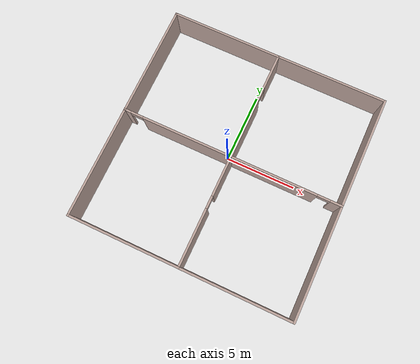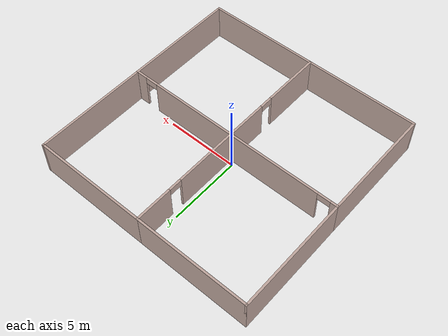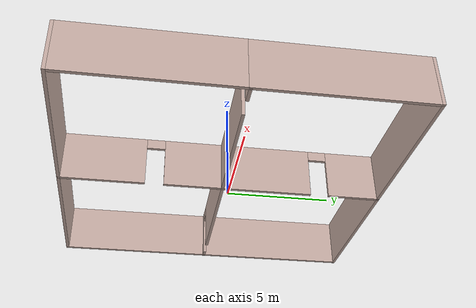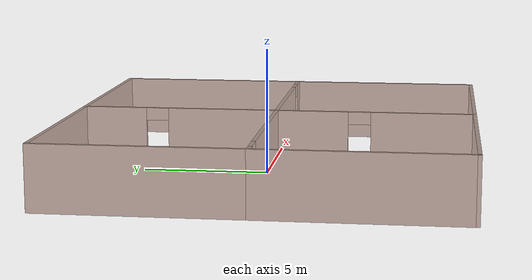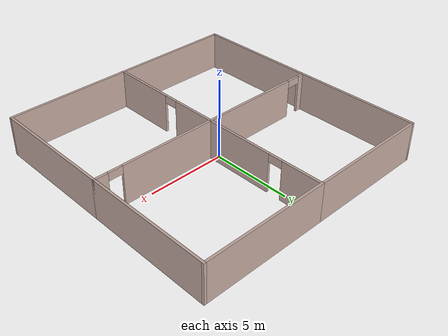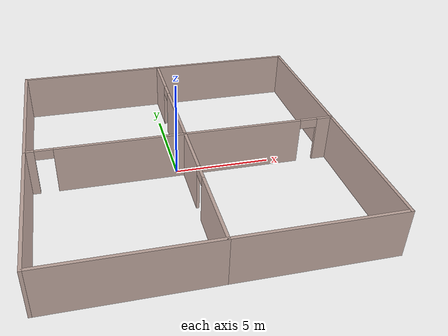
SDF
<?xml version='1.0'?>
<sdf version='1.7'>
  <model name='plane_2'>
    <pose>0.379349 -0.328001 0 0 -0 0</pose>
    <link name='Wall_10'>
      <pose>-3.925 0 0 0 -0 0</pose>
      <visual name='Wall_10_Visual_0'>
        <pose>-3.73035 0 1.25 0 -0 0</pose>
        <geometry>
          <box>
            <size>0.539304 0.15 2.5</size>
          </box>
        </geometry>
        <material>
          <script>
            <uri>file://media/materials/scripts/gazebo.material</uri>
            <name>Gazebo/Grey</name>
          </script>
          <ambient>0.760784 0.662745 0.627451 1</ambient>
        </material>
        <meta>
          <layer>0</layer>
        </meta>
      </visual>
      <collision name='Wall_10_Collision_0'>
        <geometry>
          <box>
            <size>0.539304 0.15 2.5</size>
          </box>
        </geometry>
        <pose>-3.73035 0 1.25 0 -0 0</pose>
      </collision>
      <visual name='Wall_10_Visual_1'>
        <pose>0.719652 0 1.25 0 -0 0</pose>
        <geometry>
          <box>
            <size>6.5607 0.15 2.5</size>
          </box>
        </geometry>
        <material>
          <script>
            <uri>file://media/materials/scripts/gazebo.material</uri>
            <name>Gazebo/Grey</name>
          </script>
          <ambient>0.760784 0.662745 0.627451 1</ambient>
        </material>
        <meta>
          <layer>0</layer>
        </meta>
      </visual>
      <collision name='Wall_10_Collision_1'>
        <geometry>
          <box>
            <size>6.5607 0.15 2.5</size>
          </box>
        </geometry>
        <pose>0.719652 0 1.25 0 -0 0</pose>
      </collision>
      <visual name='Wall_10_Visual_2'>
        <pose>-3.0107 0 2.25 0 -0 0</pose>
        <geometry>
          <box>
            <size>0.9 0.15 0.5</size>
          </box>
        </geometry>
        <material>
          <script>
            <uri>file://media/materials/scripts/gazebo.material</uri>
            <name>Gazebo/Grey</name>
          </script>
          <ambient>0.760784 0.662745 0.627451 1</ambient>
        </material>
        <meta>
          <layer>0</layer>
        </meta>
      </visual>
      <collision name='Wall_10_Collision_2'>
        <geometry>
          <box>
            <size>0.9 0.15 0.5</size>
          </box>
        </geometry>
        <pose>-3.0107 0 2.25 0 -0 0</pose>
      </collision>
    </link>
    <link name='Wall_11'>
      <pose>-0 -3.925 0 0 -0 -1.5708</pose>
      <visual name='Wall_11_Visual_0'>
        <pose>-2.52544 0 1.25 0 -0 0</pose>
        <geometry>
          <box>
            <size>2.94912 0.15 2.5</size>
          </box>
        </geometry>
        <material>
          <script>
            <uri>file://media/materials/scripts/gazebo.material</uri>
            <name>Gazebo/Grey</name>
          </script>
          <ambient>0.760784 0.662745 0.627451 1</ambient>
        </material>
        <meta>
          <layer>0</layer>
        </meta>
      </visual>
      <collision name='Wall_11_Collision_0'>
        <geometry>
          <box>
            <size>2.94912 0.15 2.5</size>
          </box>
        </geometry>
        <pose>-2.52544 0 1.25 0 -0 0</pose>
      </collision>
      <visual name='Wall_11_Visual_1'>
        <pose>1.92456 0 1.25 0 -0 0</pose>
        <geometry>
          <box>
            <size>4.15088 0.15 2.5</size>
          </box>
        </geometry>
        <material>
          <script>
            <uri>file://media/materials/scripts/gazebo.material</uri>
            <name>Gazebo/Grey</name>
          </script>
          <ambient>0.760784 0.662745 0.627451 1</ambient>
        </material>
        <meta>
          <layer>0</layer>
        </meta>
      </visual>
      <collision name='Wall_11_Collision_1'>
        <geometry>
          <box>
            <size>4.15088 0.15 2.5</size>
          </box>
        </geometry>
        <pose>1.92456 0 1.25 0 -0 0</pose>
      </collision>
      <visual name='Wall_11_Visual_2'>
        <pose>-0.600877 0 2.25 0 -0 0</pose>
        <geometry>
          <box>
            <size>0.9 0.15 0.5</size>
          </box>
        </geometry>
        <material>
          <script>
            <uri>file://media/materials/scripts/gazebo.material</uri>
            <name>Gazebo/Grey</name>
          </script>
          <ambient>0.760784 0.662745 0.627451 1</ambient>
        </material>
        <meta>
          <layer>0</layer>
        </meta>
      </visual>
      <collision name='Wall_11_Collision_2'>
        <geometry>
          <box>
            <size>0.9 0.15 0.5</size>
          </box>
        </geometry>
        <pose>-0.600877 0 2.25 0 -0 0</pose>
      </collision>
    </link>
    <link name='Wall_12'>
      <collision name='Wall_12_Collision'>
        <geometry>
          <box>
            <size>8 0.15 2.5</size>
          </box>
        </geometry>
        <pose>0 0 1.25 0 -0 0</pose>
      </collision>
      <visual name='Wall_12_Visual'>
        <pose>0 0 1.25 0 -0 0</pose>
        <geometry>
          <box>
            <size>8 0.15 2.5</size>
          </box>
        </geometry>
        <material>
          <script>
            <uri>file://media/materials/scripts/gazebo.material</uri>
            <name>Gazebo/Grey</name>
          </script>
          <ambient>0.760784 0.662745 0.627451 1</ambient>
        </material>
        <meta>
          <layer>0</layer>
        </meta>
      </visual>
      <pose>-3.925 -7.85 0 0 -0 3.14159</pose>
    </link>
    <link name='Wall_15'>
      <pose>3.925 0 0 0 -0 0</pose>
      <visual name='Wall_15_Visual_0'>
        <pose>-0.892945 0 1.25 0 -0 0</pose>
        <geometry>
          <box>
            <size>6.21411 0.15 2.5</size>
          </box>
        </geometry>
        <material>
          <script>
            <uri>file://media/materials/scripts/gazebo.material</uri>
            <name>Gazebo/Grey</name>
          </script>
          <ambient>0.760784 0.662745 0.627451 1</ambient>
        </material>
        <meta>
          <layer>0</layer>
        </meta>
      </visual>
      <collision name='Wall_15_Collision_0'>
        <geometry>
          <box>
            <size>6.21411 0.15 2.5</size>
          </box>
        </geometry>
        <pose>-0.892945 0 1.25 0 -0 0</pose>
      </collision>
      <visual name='Wall_15_Visual_1'>
        <pose>3.55706 0 1.25 0 -0 0</pose>
        <geometry>
          <box>
            <size>0.885891 0.15 2.5</size>
          </box>
        </geometry>
        <material>
          <script>
            <uri>file://media/materials/scripts/gazebo.material</uri>
            <name>Gazebo/Grey</name>
          </script>
          <ambient>0.760784 0.662745 0.627451 1</ambient>
        </material>
        <meta>
          <layer>0</layer>
        </meta>
      </visual>
      <collision name='Wall_15_Collision_1'>
        <geometry>
          <box>
            <size>0.885891 0.15 2.5</size>
          </box>
        </geometry>
        <pose>3.55706 0 1.25 0 -0 0</pose>
      </collision>
      <visual name='Wall_15_Visual_2'>
        <pose>2.66411 0 2.25 0 -0 0</pose>
        <geometry>
          <box>
            <size>0.9 0.15 0.5</size>
          </box>
        </geometry>
        <material>
          <script>
            <uri>file://media/materials/scripts/gazebo.material</uri>
            <name>Gazebo/Grey</name>
          </script>
          <ambient>0.760784 0.662745 0.627451 1</ambient>
        </material>
        <meta>
          <layer>0</layer>
        </meta>
      </visual>
      <collision name='Wall_15_Collision_2'>
        <geometry>
          <box>
            <size>0.9 0.15 0.5</size>
          </box>
        </geometry>
        <pose>2.66411 0 2.25 0 -0 0</pose>
      </collision>
    </link>
    <link name='Wall_16'>
      <collision name='Wall_16_Collision'>
        <geometry>
          <box>
            <size>8 0.15 2.5</size>
          </box>
        </geometry>
        <pose>0 0 1.25 0 -0 0</pose>
      </collision>
      <visual name='Wall_16_Visual'>
        <pose>0 0 1.25 0 -0 0</pose>
        <geometry>
          <box>
            <size>8 0.15 2.5</size>
          </box>
        </geometry>
        <material>
          <script>
            <uri>file://media/materials/scripts/gazebo.material</uri>
            <name>Gazebo/Grey</name>
          </script>
          <ambient>0.760784 0.662745 0.627451 1</ambient>
        </material>
        <meta>
          <layer>0</layer>
        </meta>
      </visual>
      <pose>7.85 -3.925 0 0 -0 -1.5708</pose>
    </link>
    <link name='Wall_17'>
      <collision name='Wall_17_Collision'>
        <geometry>
          <box>
            <size>8 0.15 2.5</size>
          </box>
        </geometry>
        <pose>0 0 1.25 0 -0 0</pose>
      </collision>
      <visual name='Wall_17_Visual'>
        <pose>0 0 1.25 0 -0 0</pose>
        <geometry>
          <box>
            <size>8 0.15 2.5</size>
          </box>
        </geometry>
        <material>
          <script>
            <uri>file://media/materials/scripts/gazebo.material</uri>
            <name>Gazebo/Grey</name>
          </script>
          <ambient>0.760784 0.662745 0.627451 1</ambient>
        </material>
        <meta>
          <layer>0</layer>
        </meta>
      </visual>
      <pose>3.925 -7.85 0 0 -0 3.14159</pose>
    </link>
    <link name='Wall_26'>
      <collision name='Wall_26_Collision'>
        <geometry>
          <box>
            <size>8 0.15 2.5</size>
          </box>
        </geometry>
        <pose>0 0 1.25 0 -0 0</pose>
      </collision>
      <visual name='Wall_26_Visual'>
        <pose>0 0 1.25 0 -0 0</pose>
        <geometry>
          <box>
            <size>8 0.15 2.5</size>
          </box>
        </geometry>
        <material>
          <script>
            <uri>file://media/materials/scripts/gazebo.material</uri>
            <name>Gazebo/Grey</name>
          </script>
          <ambient>0.760784 0.662745 0.627451 1</ambient>
        </material>
        <meta>
          <layer>0</layer>
        </meta>
      </visual>
      <pose>-7.85 3.925 0 0 -0 1.5708</pose>
    </link>
    <link name='Wall_27'>
      <collision name='Wall_27_Collision'>
        <geometry>
          <box>
            <size>8 0.15 2.5</size>
          </box>
        </geometry>
        <pose>0 0 1.25 0 -0 0</pose>
      </collision>
      <visual name='Wall_27_Visual'>
        <pose>0 0 1.25 0 -0 0</pose>
        <geometry>
          <box>
            <size>8 0.15 2.5</size>
          </box>
        </geometry>
        <material>
          <script>
            <uri>file://media/materials/scripts/gazebo.material</uri>
            <name>Gazebo/Grey</name>
          </script>
          <ambient>0.760784 0.662745 0.627451 1</ambient>
        </material>
        <meta>
          <layer>0</layer>
        </meta>
      </visual>
      <pose>-3.925 7.85 0 0 -0 0</pose>
    </link>
    <link name='Wall_28'>
      <pose>-0 3.925 0 0 -0 -1.5708</pose>
      <visual name='Wall_28_Visual_0'>
        <pose>-2.68769 0 1.25 0 -0 0</pose>
        <geometry>
          <box>
            <size>2.62462 0.15 2.5</size>
          </box>
        </geometry>
        <material>
          <script>
            <uri>file://media/materials/scripts/gazebo.material</uri>
            <name>Gazebo/Grey</name>
          </script>
          <ambient>0.760784 0.662745 0.627451 1</ambient>
        </material>
        <meta>
          <layer>0</layer>
        </meta>
      </visual>
      <collision name='Wall_28_Collision_0'>
        <geometry>
          <box>
            <size>2.62462 0.15 2.5</size>
          </box>
        </geometry>
        <pose>-2.68769 0 1.25 0 -0 0</pose>
      </collision>
      <visual name='Wall_28_Visual_1'>
        <pose>1.76231 0 1.25 0 -0 0</pose>
        <geometry>
          <box>
            <size>4.47538 0.15 2.5</size>
          </box>
        </geometry>
        <material>
          <script>
            <uri>file://media/materials/scripts/gazebo.material</uri>
            <name>Gazebo/Grey</name>
          </script>
          <ambient>0.760784 0.662745 0.627451 1</ambient>
        </material>
        <meta>
          <layer>0</layer>
        </meta>
      </visual>
      <collision name='Wall_28_Collision_1'>
        <geometry>
          <box>
            <size>4.47538 0.15 2.5</size>
          </box>
        </geometry>
        <pose>1.76231 0 1.25 0 -0 0</pose>
      </collision>
      <visual name='Wall_28_Visual_2'>
        <pose>-0.925382 0 2.25 0 -0 0</pose>
        <geometry>
          <box>
            <size>0.9 0.15 0.5</size>
          </box>
        </geometry>
        <material>
          <script>
            <uri>file://media/materials/scripts/gazebo.material</uri>
            <name>Gazebo/Grey</name>
          </script>
          <ambient>0.760784 0.662745 0.627451 1</ambient>
        </material>
        <meta>
          <layer>0</layer>
        </meta>
      </visual>
      <collision name='Wall_28_Collision_2'>
        <geometry>
          <box>
            <size>0.9 0.15 0.5</size>
          </box>
        </geometry>
        <pose>-0.925382 0 2.25 0 -0 0</pose>
      </collision>
    </link>
    <link name='Wall_30'>
      <collision name='Wall_30_Collision'>
        <geometry>
          <box>
            <size>8 0.15 2.5</size>
          </box>
        </geometry>
        <pose>0 0 1.25 0 -0 0</pose>
      </collision>
      <visual name='Wall_30_Visual'>
        <pose>0 0 1.25 0 -0 0</pose>
        <geometry>
          <box>
            <size>8 0.15 2.5</size>
          </box>
        </geometry>
        <material>
          <script>
            <uri>file://media/materials/scripts/gazebo.material</uri>
            <name>Gazebo/Grey</name>
          </script>
          <ambient>0.760784 0.662745 0.627451 1</ambient>
        </material>
        <meta>
          <layer>0</layer>
        </meta>
      </visual>
      <pose>7.85 3.925 0 0 -0 1.5708</pose>
    </link>
    <link name='Wall_31'>
      <collision name='Wall_31_Collision'>
        <geometry>
          <box>
            <size>8 0.15 2.5</size>
          </box>
        </geometry>
        <pose>0 0 1.25 0 -0 0</pose>
      </collision>
      <visual name='Wall_31_Visual'>
        <pose>0 0 1.25 0 -0 0</pose>
        <geometry>
          <box>
            <size>8 0.15 2.5</size>
          </box>
        </geometry>
        <material>
          <script>
            <uri>file://media/materials/scripts/gazebo.material</uri>
            <name>Gazebo/Grey</name>
          </script>
          <ambient>0.760784 0.662745 0.627451 1</ambient>
        </material>
        <meta>
          <layer>0</layer>
        </meta>
      </visual>
      <pose>3.925 7.85 0 0 -0 3.14159</pose>
    </link>
    <link name='Wall_9'>
      <collision name='Wall_9_Collision'>
        <geometry>
          <box>
            <size>8 0.15 2.5</size>
          </box>
        </geometry>
        <pose>0 0 1.25 0 -0 0</pose>
      </collision>
      <visual name='Wall_9_Visual'>
        <pose>0 0 1.25 0 -0 0</pose>
        <geometry>
          <box>
            <size>8 0.15 2.5</size>
          </box>
        </geometry>
        <material>
          <script>
            <uri>file://media/materials/scripts/gazebo.material</uri>
            <name>Gazebo/Grey</name>
          </script>
          <ambient>0.760784 0.662745 0.627451 1</ambient>
        </material>
        <meta>
          <layer>0</layer>
        </meta>
      </visual>
      <pose>-7.85 -3.925 0 0 -0 1.5708</pose>
    </link>
    <static>1</static>
  </model>
</sdf>
